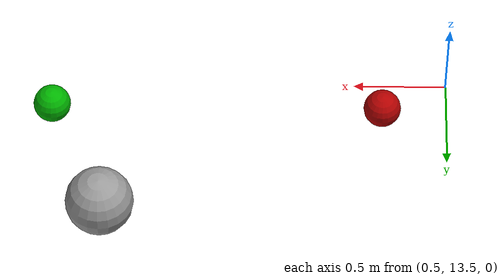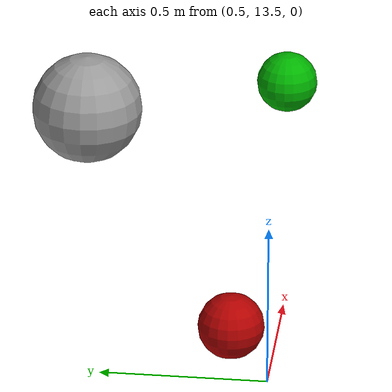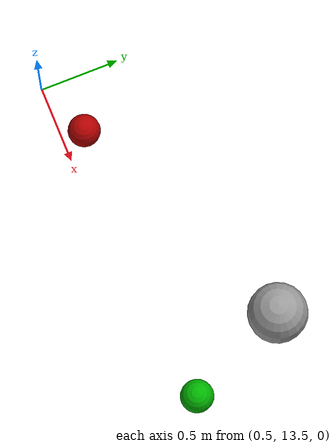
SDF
<sdf version="1.6">
 <world name="default">
  <include><uri>model://sun</uri></include>
  <model name="Small gate buoy (red) #5">
   <pose>0.8459258155984692 13.644294570404377 0 0 0 0</pose>
   <static>1</static>
   <link name="sphere">
    <inertial>
     <mass>1</mass>
     <inertia><ixx>0.06773</ixx><ixy>0</ixy><ixz>0</ixz><iyy>0.06773</iyy><iyz>0</iyz><izz>0.06773</izz></inertia>
    </inertial>
    <visual name="visual">
     <geometry><sphere><radius>0.1016</radius></sphere></geometry>
     <material>
      <lighting>1</lighting>
      <script><uri>file://media/materials/scripts/gazebo.material</uri><name>Gazebo/Grey</name></script>
      <shader type="pixel"><normal_map>__default__</normal_map></shader>
      <ambient>0.3 0.3 0.3 1</ambient>
      <diffuse>0.7 0 0 1</diffuse>
      <specular>0.01 0.01 0.01 1</specular>
      <emissive>0 0 0 1</emissive>
     </material>
    </visual>
    <collision name="collision">
     <geometry><sphere><radius>0.1016</radius></sphere></geometry>
     <surface>
      <friction>
       <ode><mu>1</mu><mu2>1</mu2><fdir1>0 0 0</fdir1><slip1>0</slip1><slip2>0</slip2></ode>
       <torsional>
        <coefficient>1</coefficient>
        <patch_radius>0</patch_radius>
        <surface_radius>0</surface_radius>
        <use_patch_radius>1</use_patch_radius>
        <ode><slip>0</slip></ode>
       </torsional>
      </friction>
      <bounce><restitution_coefficient>0</restitution_coefficient><threshold>1e+06</threshold></bounce>
      <contact>
       <collide_without_contact>0</collide_without_contact>
       <collide_without_contact_bitmask>1</collide_without_contact_bitmask>
       <collide_bitmask>1</collide_bitmask>
       <ode>
        <soft_cfm>0</soft_cfm>
        <soft_erp>0.2</soft_erp>
        <kp>1e+13</kp>
        <kd>1</kd>
        <max_vel>0.01</max_vel>
        <min_depth>0</min_depth>
       </ode>
       <bullet>
        <split_impulse>1</split_impulse>
        <split_impulse_penetration_threshold>-0.01</split_impulse_penetration_threshold>
        <soft_cfm>0</soft_cfm>
        <soft_erp>0.2</soft_erp>
        <kp>1e+13</kp>
        <kd>1</kd>
       </bullet>
      </contact>
     </surface>
    </collision>
   </link>
  </model>
  <model name="Small gate buoy (green) #5">
   <pose>2.6459258155984693 13.644294570404377 0 0 0 0</pose>
   <static>1</static>
   <link name="sphere">
    <inertial>
     <mass>1</mass>
     <inertia><ixx>0.06773</ixx><ixy>0</ixy><ixz>0</ixz><iyy>0.06773</iyy><iyz>0</iyz><izz>0.06773</izz></inertia>
    </inertial>
    <visual name="visual">
     <geometry><sphere><radius>0.1016</radius></sphere></geometry>
     <material>
      <lighting>1</lighting>
      <script><uri>file://media/materials/scripts/gazebo.material</uri><name>Gazebo/Grey</name></script>
      <shader type="pixel"><normal_map>__default__</normal_map></shader>
      <ambient>0.3 0.3 0.3 1</ambient>
      <diffuse>0 0.7 0 1</diffuse>
      <specular>0.01 0.01 0.01 1</specular>
      <emissive>0 0 0 1</emissive>
     </material>
    </visual>
    <collision name="collision">
     <geometry><sphere><radius>0.1016</radius></sphere></geometry>
     <surface>
      <friction>
       <ode><mu>1</mu><mu2>1</mu2><fdir1>0 0 0</fdir1><slip1>0</slip1><slip2>0</slip2></ode>
       <torsional>
        <coefficient>1</coefficient>
        <patch_radius>0</patch_radius>
        <surface_radius>0</surface_radius>
        <use_patch_radius>1</use_patch_radius>
        <ode><slip>0</slip></ode>
       </torsional>
      </friction>
      <bounce><restitution_coefficient>0</restitution_coefficient><threshold>1e+06</threshold></bounce>
      <contact>
       <collide_without_contact>0</collide_without_contact>
       <collide_without_contact_bitmask>1</collide_without_contact_bitmask>
       <collide_bitmask>1</collide_bitmask>
       <ode>
        <soft_cfm>0</soft_cfm>
        <soft_erp>0.2</soft_erp>
        <kp>1e+13</kp>
        <kd>1</kd>
        <max_vel>0.01</max_vel>
        <min_depth>0</min_depth>
       </ode>
       <bullet>
        <split_impulse>1</split_impulse>
        <split_impulse_penetration_threshold>-0.01</split_impulse_penetration_threshold>
        <soft_cfm>0</soft_cfm>
        <soft_erp>0.2</soft_erp>
        <kp>1e+13</kp>
        <kd>1</kd>
       </bullet>
      </contact>
     </surface>
    </collision>
   </link>
  </model>
  <model name="Gate buoy (black) #5">
   <pose>2.3600094395056885 14.284775035245456 0 0 0 0</pose>
   <static>1</static>
   <link name="sphere">
    <inertial>
     <mass>1</mass>
     <inertia>
      <ixx>0.0135645</ixx>
      <ixy>0</ixy>
      <ixz>0</ixz>
      <iyy>0.0135645</iyy>
      <iyz>0</iyz>
      <izz>0.0135645</izz>
     </inertia>
    </inertial>
    <visual name="visual">
     <geometry><sphere><radius>0.18415</radius></sphere></geometry>
     <material>
      <lighting>1</lighting>
      <script><uri>file://media/materials/scripts/gazebo.material</uri><name>Gazebo/Grey</name></script>
      <shader type="pixel"><normal_map>__default__</normal_map></shader>
      <ambient>0.3 0.3 0.3 1</ambient>
      <diffuse>0 0 0 1</diffuse>
      <specular>0.01 0.01 0.01 1</specular>
      <emissive>0 0 0 1</emissive>
     </material>
    </visual>
    <collision name="collision">
     <geometry><sphere><radius>0.18415</radius></sphere></geometry>
     <surface>
      <friction>
       <ode><mu>1</mu><mu2>1</mu2><fdir1>0 0 0</fdir1><slip1>0</slip1><slip2>0</slip2></ode>
       <torsional>
        <coefficient>1</coefficient>
        <patch_radius>0</patch_radius>
        <surface_radius>0</surface_radius>
        <use_patch_radius>1</use_patch_radius>
        <ode><slip>0</slip></ode>
       </torsional>
      </friction>
      <bounce><restitution_coefficient>0</restitution_coefficient><threshold>1e+06</threshold></bounce>
      <contact>
       <collide_without_contact>0</collide_without_contact>
       <collide_without_contact_bitmask>1</collide_without_contact_bitmask>
       <collide_bitmask>1</collide_bitmask>
       <ode>
        <soft_cfm>0</soft_cfm>
        <soft_erp>0.2</soft_erp>
        <kp>1e+13</kp>
        <kd>1</kd>
        <max_vel>0.01</max_vel>
        <min_depth>0</min_depth>
       </ode>
       <bullet>
        <split_impulse>1</split_impulse>
        <split_impulse_penetration_threshold>-0.01</split_impulse_penetration_threshold>
        <soft_cfm>0</soft_cfm>
        <soft_erp>0.2</soft_erp>
        <kp>1e+13</kp>
        <kd>1</kd>
       </bullet>
      </contact>
     </surface>
    </collision>
   </link>
  </model>
 </world>
</sdf>
